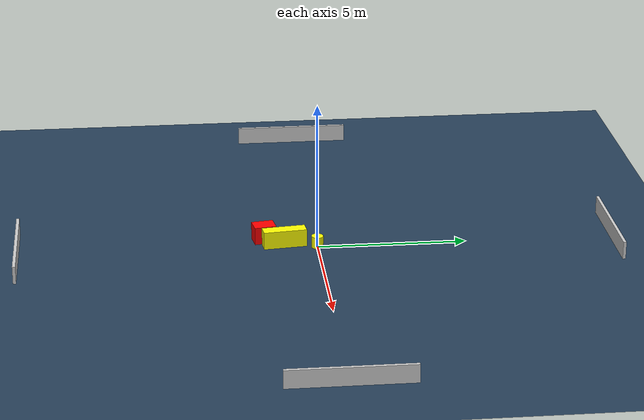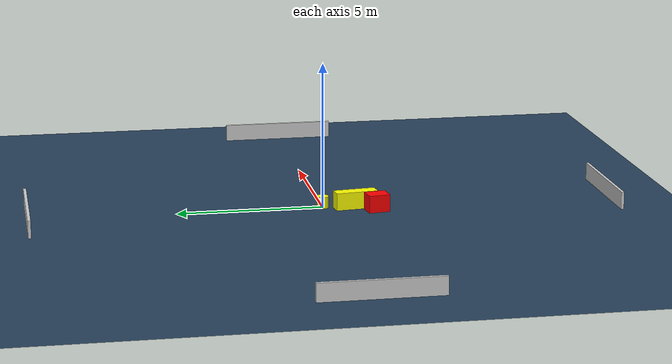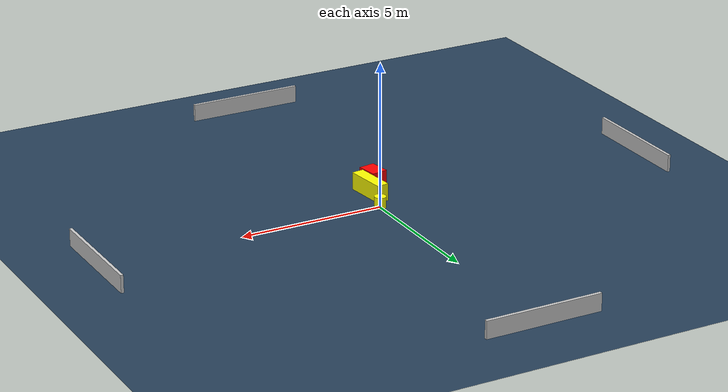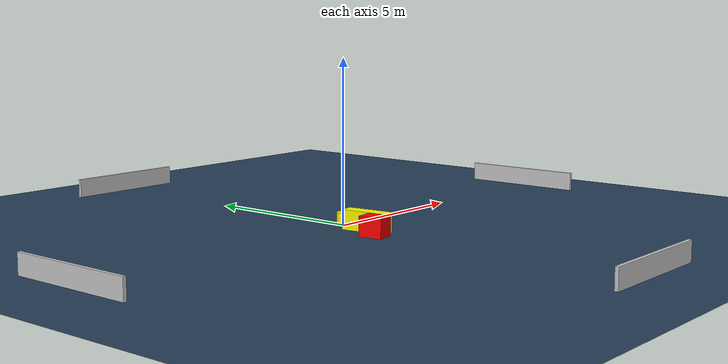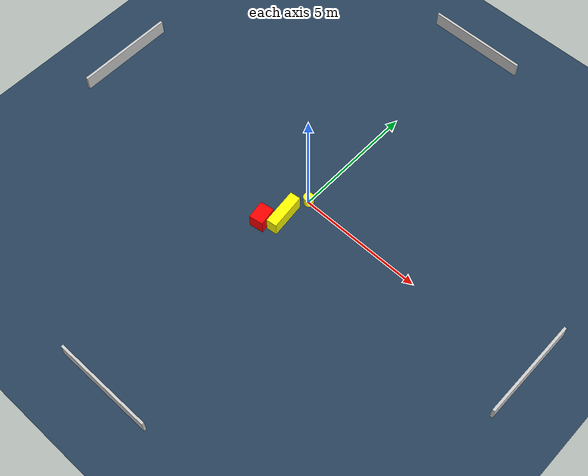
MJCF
<?xml version="1.0" ?>
<mujoco model="generated_environment">
  <option timestep="0.01" integrator="RK4" cone="elliptic"/>
  <default>
    <geom density="1"/>
  </default>
  <asset>
    <texture builtin="gradient" height="3072" name="skybox" rgb1="0.3 0.5 0.7" rgb2="0 0 0" type="skybox" width="512"/>
    <texture builtin="checker" height="300" name="groundplane" rgb1="0.2 0.3 0.4" rgb2="0.1 0.2 0.3" type="2d" width="300"/>
    <material name="groundplane" reflectance="0.2" texrepeat="5 5" texture="groundplane"/>
  </asset>
  <worldbody>
    <light dir="0 0 -1" directional="true" pos="0 0 1.5"/>
    <geom condim="3" friction="0.5 0.005 0.001" material="groundplane" name="floor" pos="0 0 0" size="0 0 0.05" type="plane"/>
    <body name="walls">
      <geom name="wall_1" condim="4" pos="-10.0 0.0 0.3" rgba="0.800000011920929 0.800000011920929 0.800000011920929 1.0" size="0.05 2.0 0.3" type="box"/>
      <geom name="wall_2" condim="4" pos="10.0 0.0 0.3" rgba="0.800000011920929 0.800000011920929 0.800000011920929 1.0" size="0.05 2.0 0.3" type="box"/>
      <geom name="wall_3" condim="4" pos="0.0 -10.0 0.3" rgba="0.800000011920929 0.800000011920929 0.800000011920929 1.0" size="2.0 0.05 0.3" type="box"/>
      <geom name="wall_4" condim="4" pos="0.0 10.0 0.3" rgba="0.800000011920929 0.800000011920929 0.800000011920929 1.0" size="2.0 0.05 0.3" type="box"/>
    </body>
    <body name="robot">
      <joint name="joint_x" type="slide" pos="0 0 0" axis="1 0 0"/>
      <joint name="joint_y" type="slide" pos="0 0 0" axis="0 1 0"/>
      <geom name="robot" type="cylinder" pos="0.0 0.0 0.2" size="0.2 0.2 0.0" mass="5.0" friction="1.0 0.005 0.0001" condim="4" rgba="1.0 1.0 0.0 1.0"/>
    </body>
    <body name="obstacle_1_movable">
      <geom name="obstacle_1_movable" condim="4" pos="-0.2280454228710923 -1.0913501987747591 0.3" euler="0 0 96.33717305478945" friction="0.0 0.005 0.001" rgba="1.0 1.0 0.0 1.0" size="0.7289723512098119 0.21192689249678395 0.3" type="box" mass="0.1"/>
      <joint type="free"/>
    </body>
    <body name="obstacle_2_static">
      <geom name="obstacle_2_static" condim="4" pos="-0.6968120033323261 -1.7456223221196452 0.3" euler="0 0 98.83079313327647" friction="0.0 0.005 0.001" rgba="1.0 0.0 0.0 1.0" size="0.36735954132597437 0.2817842244796611 0.3" type="box"/>
    </body>
  </worldbody>
  <actuator>
    <motor name="actuator_x" joint="joint_x" gear="1" ctrlrange="-1 1"/>
    <motor name="actuator_y" joint="joint_y" gear="1" ctrlrange="-1 1"/>
  </actuator>
</mujoco>
